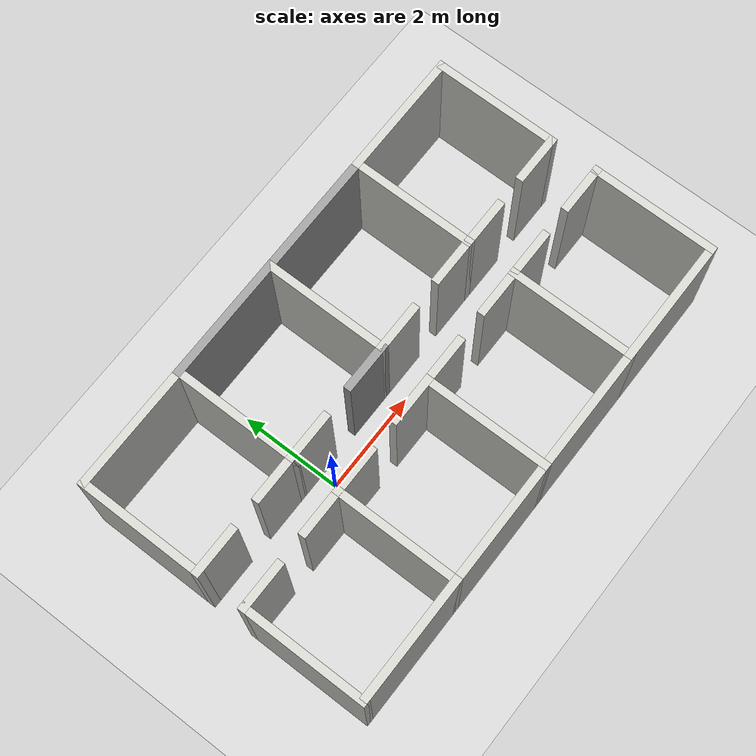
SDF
<?xml version='1.0'?>
<sdf version='1.7'>
  <world name="b2">
    <include>
      <uri>model://sun</uri>
    </include>
    <include>
      <uri>model://ground_plane</uri>
    </include>

    <model name='B2'>
      <pose>1.8577 -0.088276 0 0 -0 0</pose>
      <link name='Wall_0'>
        <collision name='Wall_0_Collision'>
          <geometry>
            <box>
              <size>1 0.15 2.5</size>
            </box>
          </geometry>
          <pose>0 0 1.25 0 -0 0</pose>
        </collision>
        <visual name='Wall_0_Visual'>
          <pose>0 0 1.25 0 -0 0</pose>
          <geometry>
            <box>
              <size>1 0.15 2.5</size>
            </box>
          </geometry>
          <material>
            <script>
              <uri>file://media/materials/scripts/gazebo.material</uri>
              <name>Gazebo/CeilingTiled</name>
            </script>
            <ambient>1 1 1 1</ambient>
          </material>
          <meta>
            <layer>0</layer>
          </meta>
        </visual>
        <pose>-0.425817 -0.466398 0 0 -0 3.14159</pose>
      </link>
      <link name='Wall_11'>
        <collision name='Wall_11_Collision'>
          <geometry>
            <box>
              <size>2.5 0.15 2.5</size>
            </box>
          </geometry>
          <pose>0 0 1.25 0 -0 0</pose>
        </collision>
        <visual name='Wall_11_Visual'>
          <pose>0 0 1.25 0 -0 0</pose>
          <geometry>
            <box>
              <size>2.5 0.15 2.5</size>
            </box>
          </geometry>
          <material>
            <script>
              <uri>file://media/materials/scripts/gazebo.material</uri>
              <name>Gazebo/CeilingTiled</name>
            </script>
            <ambient>1 1 1 1</ambient>
          </material>
          <meta>
            <layer>0</layer>
          </meta>
        </visual>
        <pose>1.18174 -2.81631 0 0 -0 3.14159</pose>
      </link>
      <link name='Wall_13'>
        <collision name='Wall_13_Collision'>
          <geometry>
            <box>
              <size>2.5 0.15 2.5</size>
            </box>
          </geometry>
          <pose>0 0 1.25 0 -0 0</pose>
        </collision>
        <visual name='Wall_13_Visual'>
          <pose>0 0 1.25 0 -0 0</pose>
          <geometry>
            <box>
              <size>2.5 0.15 2.5</size>
            </box>
          </geometry>
          <material>
            <script>
              <uri>file://media/materials/scripts/gazebo.material</uri>
              <name>Gazebo/CeilingTiled</name>
            </script>
            <ambient>1 1 1 1</ambient>
          </material>
          <meta>
            <layer>0</layer>
          </meta>
        </visual>
        <pose>2.35674 -1.64131 0 0 -0 -1.5708</pose>
      </link>
      <link name='Wall_15'>
        <collision name='Wall_15_Collision'>
          <geometry>
            <box>
              <size>1 0.15 2.5</size>
            </box>
          </geometry>
          <pose>0 0 1.25 0 -0 0</pose>
        </collision>
        <visual name='Wall_15_Visual'>
          <pose>0 0 1.25 0 -0 0</pose>
          <geometry>
            <box>
              <size>1 0.15 2.5</size>
            </box>
          </geometry>
          <material>
            <script>
              <uri>file://media/materials/scripts/gazebo.material</uri>
              <name>Gazebo/CeilingTiled</name>
            </script>
            <ambient>1 1 1 1</ambient>
          </material>
          <meta>
            <layer>0</layer>
          </meta>
        </visual>
        <pose>0.424183 -0.466398 0 0 -0 3.14159</pose>
      </link>
      <link name='Wall_17'>
        <collision name='Wall_17_Collision'>
          <geometry>
            <box>
              <size>1 0.15 2.5</size>
            </box>
          </geometry>
          <pose>0 0 1.25 0 -0 0</pose>
        </collision>
        <visual name='Wall_17_Visual'>
          <pose>0 0 1.25 0 -0 0</pose>
          <geometry>
            <box>
              <size>1 0.15 2.5</size>
            </box>
          </geometry>
          <material>
            <script>
              <uri>file://media/materials/scripts/gazebo.material</uri>
              <name>Gazebo/CeilingTiled</name>
            </script>
            <ambient>1 1 1 1</ambient>
          </material>
          <meta>
            <layer>0</layer>
          </meta>
        </visual>
        <pose>1.93174 -0.466312 0 0 -0 3.14159</pose>
      </link>
      <link name='Wall_19'>
        <collision name='Wall_19_Collision'>
          <geometry>
            <box>
              <size>2.5 0.15 2.5</size>
            </box>
          </geometry>
          <pose>0 0 1.25 0 -0 0</pose>
        </collision>
        <visual name='Wall_19_Visual'>
          <pose>0 0 1.25 0 -0 0</pose>
          <geometry>
            <box>
              <size>2.5 0.15 2.5</size>
            </box>
          </geometry>
          <material>
            <script>
              <uri>file://media/materials/scripts/gazebo.material</uri>
              <name>Gazebo/CeilingTiled</name>
            </script>
            <ambient>1 1 1 1</ambient>
          </material>
          <meta>
            <layer>0</layer>
          </meta>
        </visual>
        <pose>3.53174 -2.81631 0 0 -0 3.14159</pose>
      </link>
      <link name='Wall_2'>
        <collision name='Wall_2_Collision'>
          <geometry>
            <box>
              <size>2.5 0.15 2.5</size>
            </box>
          </geometry>
          <pose>0 0 1.25 0 -0 0</pose>
        </collision>
        <visual name='Wall_2_Visual'>
          <pose>0 0 1.25 0 -0 0</pose>
          <geometry>
            <box>
              <size>2.5 0.15 2.5</size>
            </box>
          </geometry>
          <material>
            <script>
              <uri>file://media/materials/scripts/gazebo.material</uri>
              <name>Gazebo/CeilingTiled</name>
            </script>
            <ambient>1 1 1 1</ambient>
          </material>
          <meta>
            <layer>0</layer>
          </meta>
        </visual>
        <pose>0.002964 -1.64135 0 0 -0 1.57401</pose>
      </link>
      <link name='Wall_21'>
        <collision name='Wall_21_Collision'>
          <geometry>
            <box>
              <size>2.5 0.15 2.5</size>
            </box>
          </geometry>
          <pose>0 0 1.25 0 -0 0</pose>
        </collision>
        <visual name='Wall_21_Visual'>
          <pose>0 0 1.25 0 -0 0</pose>
          <geometry>
            <box>
              <size>2.5 0.15 2.5</size>
            </box>
          </geometry>
          <material>
            <script>
              <uri>file://media/materials/scripts/gazebo.material</uri>
              <name>Gazebo/CeilingTiled</name>
            </script>
            <ambient>1 1 1 1</ambient>
          </material>
          <meta>
            <layer>0</layer>
          </meta>
        </visual>
        <pose>4.70674 -1.64131 0 0 -0 -1.5708</pose>
      </link>
      <link name='Wall_23'>
        <collision name='Wall_23_Collision'>
          <geometry>
            <box>
              <size>1 0.15 2.5</size>
            </box>
          </geometry>
          <pose>0 0 1.25 0 -0 0</pose>
        </collision>
        <visual name='Wall_23_Visual'>
          <pose>0 0 1.25 0 -0 0</pose>
          <geometry>
            <box>
              <size>1 0.15 2.5</size>
            </box>
          </geometry>
          <material>
            <script>
              <uri>file://media/materials/scripts/gazebo.material</uri>
              <name>Gazebo/CeilingTiled</name>
            </script>
            <ambient>1 1 1 1</ambient>
          </material>
          <meta>
            <layer>0</layer>
          </meta>
        </visual>
        <pose>2.78174 -0.466312 0 0 -0 0</pose>
      </link>
      <link name='Wall_25'>
        <collision name='Wall_25_Collision'>
          <geometry>
            <box>
              <size>1 0.15 2.5</size>
            </box>
          </geometry>
          <pose>0 0 1.25 0 -0 0</pose>
        </collision>
        <visual name='Wall_25_Visual'>
          <pose>0 0 1.25 0 -0 0</pose>
          <geometry>
            <box>
              <size>1 0.15 2.5</size>
            </box>
          </geometry>
          <material>
            <script>
              <uri>file://media/materials/scripts/gazebo.material</uri>
              <name>Gazebo/CeilingTiled</name>
            </script>
            <ambient>1 1 1 1</ambient>
          </material>
          <meta>
            <layer>0</layer>
          </meta>
        </visual>
        <pose>4.28174 -0.466312 0 0 -0 0</pose>
      </link>
      <link name='Wall_27'>
        <collision name='Wall_27_Collision'>
          <geometry>
            <box>
              <size>2.5 0.15 2.5</size>
            </box>
          </geometry>
          <pose>0 0 1.25 0 -0 0</pose>
        </collision>
        <visual name='Wall_27_Visual'>
          <pose>0 0 1.25 0 -0 0</pose>
          <geometry>
            <box>
              <size>2.5 0.15 2.5</size>
            </box>
          </geometry>
          <material>
            <script>
              <uri>file://media/materials/scripts/gazebo.material</uri>
              <name>Gazebo/CeilingTiled</name>
            </script>
            <ambient>1 1 1 1</ambient>
          </material>
          <meta>
            <layer>0</layer>
          </meta>
        </visual>
        <pose>-3.51826 -2.81631 0 0 -0 0</pose>
      </link>
      <link name='Wall_29'>
        <collision name='Wall_29_Collision'>
          <geometry>
            <box>
              <size>2.5 0.15 2.5</size>
            </box>
          </geometry>
          <pose>0 0 1.25 0 -0 0</pose>
        </collision>
        <visual name='Wall_29_Visual'>
          <pose>0 0 1.25 0 -0 0</pose>
          <geometry>
            <box>
              <size>2.5 0.15 2.5</size>
            </box>
          </geometry>
          <material>
            <script>
              <uri>file://media/materials/scripts/gazebo.material</uri>
              <name>Gazebo/CeilingTiled</name>
            </script>
            <ambient>1 1 1 1</ambient>
          </material>
          <meta>
            <layer>0</layer>
          </meta>
        </visual>
        <pose>-4.69326 -1.64131 0 0 -0 -1.5708</pose>
      </link>
      <link name='Wall_31'>
        <collision name='Wall_31_Collision'>
          <geometry>
            <box>
              <size>1 0.15 2.5</size>
            </box>
          </geometry>
          <pose>0 0 1.25 0 -0 0</pose>
        </collision>
        <visual name='Wall_31_Visual'>
          <pose>0 0 1.25 0 -0 0</pose>
          <geometry>
            <box>
              <size>1 0.15 2.5</size>
            </box>
          </geometry>
          <material>
            <script>
              <uri>file://media/materials/scripts/gazebo.material</uri>
              <name>Gazebo/CeilingTiled</name>
            </script>
            <ambient>1 1 1 1</ambient>
          </material>
          <meta>
            <layer>0</layer>
          </meta>
        </visual>
        <pose>-4.26826 -0.466312 0 0 -0 3.14159</pose>
      </link>
      <link name='Wall_33'>
        <collision name='Wall_33_Collision'>
          <geometry>
            <box>
              <size>1 0.15 2.5</size>
            </box>
          </geometry>
          <pose>0 0 1.25 0 -0 0</pose>
        </collision>
        <visual name='Wall_33_Visual'>
          <pose>0 0 1.25 0 -0 0</pose>
          <geometry>
            <box>
              <size>1 0.15 2.5</size>
            </box>
          </geometry>
          <material>
            <script>
              <uri>file://media/materials/scripts/gazebo.material</uri>
              <name>Gazebo/CeilingTiled</name>
            </script>
            <ambient>1 1 1 1</ambient>
          </material>
          <meta>
            <layer>0</layer>
          </meta>
        </visual>
        <pose>-2.76826 -0.466312 0 0 -0 0</pose>
      </link>
      <link name='Wall_35'>
        <collision name='Wall_35_Collision'>
          <geometry>
            <box>
              <size>2.5 0.15 2.5</size>
            </box>
          </geometry>
          <pose>0 0 1.25 0 -0 0</pose>
        </collision>
        <visual name='Wall_35_Visual'>
          <pose>0 0 1.25 0 -0 0</pose>
          <geometry>
            <box>
              <size>2.5 0.15 2.5</size>
            </box>
          </geometry>
          <material>
            <script>
              <uri>file://media/materials/scripts/gazebo.material</uri>
              <name>Gazebo/CeilingTiled</name>
            </script>
            <ambient>1 1 1 1</ambient>
          </material>
          <meta>
            <layer>0</layer>
          </meta>
        </visual>
        <pose>-4.70674 1.64159 0 0 -0 1.5708</pose>
      </link>
      <link name='Wall_37'>
        <collision name='Wall_37_Collision'>
          <geometry>
            <box>
              <size>2.5 0.15 2.5</size>
            </box>
          </geometry>
          <pose>0 0 1.25 0 -0 0</pose>
        </collision>
        <visual name='Wall_37_Visual'>
          <pose>0 0 1.25 0 -0 0</pose>
          <geometry>
            <box>
              <size>2.5 0.15 2.5</size>
            </box>
          </geometry>
          <material>
            <script>
              <uri>file://media/materials/scripts/gazebo.material</uri>
              <name>Gazebo/CeilingTiled</name>
            </script>
            <ambient>1 1 1 1</ambient>
          </material>
          <meta>
            <layer>0</layer>
          </meta>
        </visual>
        <pose>-3.53174 2.81659 0 0 -0 0</pose>
      </link>
      <link name='Wall_38'>
        <collision name='Wall_38_Collision'>
          <geometry>
            <box>
              <size>2.5 0.15 2.5</size>
            </box>
          </geometry>
          <pose>0 0 1.25 0 -0 0</pose>
        </collision>
        <visual name='Wall_38_Visual'>
          <pose>0 0 1.25 0 -0 0</pose>
          <geometry>
            <box>
              <size>2.5 0.15 2.5</size>
            </box>
          </geometry>
          <material>
            <script>
              <uri>file://media/materials/scripts/gazebo.material</uri>
              <name>Gazebo/Grey</name>
            </script>
            <ambient>1 1 1 1</ambient>
          </material>
          <meta>
            <layer>0</layer>
          </meta>
        </visual>
        <pose>-1.18175 2.81659 0 0 -0 0</pose>
      </link>
      <link name='Wall_39'>
        <collision name='Wall_39_Collision'>
          <geometry>
            <box>
              <size>2.5 0.15 2.5</size>
            </box>
          </geometry>
          <pose>0 0 1.25 0 -0 0</pose>
        </collision>
        <visual name='Wall_39_Visual'>
          <pose>0 0 1.25 0 -0 0</pose>
          <geometry>
            <box>
              <size>2.5 0.15 2.5</size>
            </box>
          </geometry>
          <material>
            <script>
              <uri>file://media/materials/scripts/gazebo.material</uri>
              <name>Gazebo/Grey</name>
            </script>
            <ambient>1 1 1 1</ambient>
          </material>
          <meta>
            <layer>0</layer>
          </meta>
        </visual>
        <pose>1.16826 2.81659 0 0 -0 0</pose>
      </link>
      <link name='Wall_4'>
        <collision name='Wall_4_Collision'>
          <geometry>
            <box>
              <size>2.5 0.15 2.5</size>
            </box>
          </geometry>
          <pose>0 0 1.25 0 -0 0</pose>
        </collision>
        <visual name='Wall_4_Visual'>
          <pose>0 0 1.25 0 -0 0</pose>
          <geometry>
            <box>
              <size>2.5 0.15 2.5</size>
            </box>
          </geometry>
          <material>
            <script>
              <uri>file://media/materials/scripts/gazebo.material</uri>
              <name>Gazebo/CeilingTiled</name>
            </script>
            <ambient>1 1 1 1</ambient>
          </material>
          <meta>
            <layer>0</layer>
          </meta>
        </visual>
        <pose>-1.16826 -2.81631 0 0 -0 0</pose>
      </link>
      <link name='Wall_40'>
        <collision name='Wall_40_Collision'>
          <geometry>
            <box>
              <size>2.5 0.15 2.5</size>
            </box>
          </geometry>
          <pose>0 0 1.25 0 -0 0</pose>
        </collision>
        <visual name='Wall_40_Visual'>
          <pose>0 0 1.25 0 -0 0</pose>
          <geometry>
            <box>
              <size>2.5 0.15 2.5</size>
            </box>
          </geometry>
          <material>
            <script>
              <uri>file://media/materials/scripts/gazebo.material</uri>
              <name>Gazebo/CeilingTiled</name>
            </script>
            <ambient>1 1 1 1</ambient>
          </material>
          <meta>
            <layer>0</layer>
          </meta>
        </visual>
        <pose>3.51825 2.81659 0 0 -0 0</pose>
      </link>
      <link name='Wall_42'>
        <collision name='Wall_42_Collision'>
          <geometry>
            <box>
              <size>2.5 0.15 2.5</size>
            </box>
          </geometry>
          <pose>0 0 1.25 0 -0 0</pose>
        </collision>
        <visual name='Wall_42_Visual'>
          <pose>0 0 1.25 0 -0 0</pose>
          <geometry>
            <box>
              <size>2.5 0.15 2.5</size>
            </box>
          </geometry>
          <material>
            <script>
              <uri>file://media/materials/scripts/gazebo.material</uri>
              <name>Gazebo/CeilingTiled</name>
            </script>
            <ambient>1 1 1 1</ambient>
          </material>
          <meta>
            <layer>0</layer>
          </meta>
        </visual>
        <pose>4.69325 1.64159 0 0 -0 1.5708</pose>
      </link>
      <link name='Wall_44'>
        <collision name='Wall_44_Collision'>
          <geometry>
            <box>
              <size>2.5 0.15 2.5</size>
            </box>
          </geometry>
          <pose>0 0 1.25 0 -0 0</pose>
        </collision>
        <visual name='Wall_44_Visual'>
          <pose>0 0 1.25 0 -0 0</pose>
          <geometry>
            <box>
              <size>2.5 0.15 2.5</size>
            </box>
          </geometry>
          <material>
            <script>
              <uri>file://media/materials/scripts/gazebo.material</uri>
              <name>Gazebo/CeilingTiled</name>
            </script>
            <ambient>1 1 1 1</ambient>
          </material>
          <meta>
            <layer>0</layer>
          </meta>
        </visual>
        <pose>-2.35675 1.64159 0 0 -0 1.5708</pose>
      </link>
      <link name='Wall_46'>
        <collision name='Wall_46_Collision'>
          <geometry>
            <box>
              <size>2.5 0.15 2.5</size>
            </box>
          </geometry>
          <pose>0 0 1.25 0 -0 0</pose>
        </collision>
        <visual name='Wall_46_Visual'>
          <pose>0 0 1.25 0 -0 0</pose>
          <geometry>
            <box>
              <size>2.5 0.15 2.5</size>
            </box>
          </geometry>
          <material>
            <script>
              <uri>file://media/materials/scripts/gazebo.material</uri>
              <name>Gazebo/CeilingTiled</name>
            </script>
            <ambient>1 1 1 1</ambient>
          </material>
          <meta>
            <layer>0</layer>
          </meta>
        </visual>
        <pose>-0.006745 1.64159 0 0 -0 1.5708</pose>
      </link>
      <link name='Wall_48'>
        <collision name='Wall_48_Collision'>
          <geometry>
            <box>
              <size>2.5 0.15 2.5</size>
            </box>
          </geometry>
          <pose>0 0 1.25 0 -0 0</pose>
        </collision>
        <visual name='Wall_48_Visual'>
          <pose>0 0 1.25 0 -0 0</pose>
          <geometry>
            <box>
              <size>2.5 0.15 2.5</size>
            </box>
          </geometry>
          <material>
            <script>
              <uri>file://media/materials/scripts/gazebo.material</uri>
              <name>Gazebo/CeilingTiled</name>
            </script>
            <ambient>1 1 1 1</ambient>
          </material>
          <meta>
            <layer>0</layer>
          </meta>
        </visual>
        <pose>2.34326 1.64159 0 0 -0 1.5708</pose>
      </link>
      <link name='Wall_50'>
        <collision name='Wall_50_Collision'>
          <geometry>
            <box>
              <size>1 0.15 2.5</size>
            </box>
          </geometry>
          <pose>0 0 1.25 0 -0 0</pose>
        </collision>
        <visual name='Wall_50_Visual'>
          <pose>0 0 1.25 0 -0 0</pose>
          <geometry>
            <box>
              <size>1 0.15 2.5</size>
            </box>
          </geometry>
          <material>
            <script>
              <uri>file://media/materials/scripts/gazebo.material</uri>
              <name>Gazebo/CeilingTiled</name>
            </script>
            <ambient>1 1 1 1</ambient>
          </material>
          <meta>
            <layer>0</layer>
          </meta>
        </visual>
        <pose>-4.28174 0.46659 0 0 -0 3.14159</pose>
      </link>
      <link name='Wall_52'>
        <collision name='Wall_52_Collision'>
          <geometry>
            <box>
              <size>1 0.15 2.5</size>
            </box>
          </geometry>
          <pose>0 0 1.25 0 -0 0</pose>
        </collision>
        <visual name='Wall_52_Visual'>
          <pose>0 0 1.25 0 -0 0</pose>
          <geometry>
            <box>
              <size>1 0.15 2.5</size>
            </box>
          </geometry>
          <material>
            <script>
              <uri>file://media/materials/scripts/gazebo.material</uri>
              <name>Gazebo/CeilingTiled</name>
            </script>
            <ambient>1 1 1 1</ambient>
          </material>
          <meta>
            <layer>0</layer>
          </meta>
        </visual>
        <pose>-2.78174 0.46659 0 0 -0 0</pose>
      </link>
      <link name='Wall_54'>
        <collision name='Wall_54_Collision'>
          <geometry>
            <box>
              <size>1 0.15 2.5</size>
            </box>
          </geometry>
          <pose>0 0 1.25 0 -0 0</pose>
        </collision>
        <visual name='Wall_54_Visual'>
          <pose>0 0 1.25 0 -0 0</pose>
          <geometry>
            <box>
              <size>1 0.15 2.5</size>
            </box>
          </geometry>
          <material>
            <script>
              <uri>file://media/materials/scripts/gazebo.material</uri>
              <name>Gazebo/Grey</name>
            </script>
            <ambient>1 1 1 1</ambient>
          </material>
          <meta>
            <layer>0</layer>
          </meta>
        </visual>
        <pose>-0.431745 0.46659 0 0 -0 0</pose>
      </link>
      <link name='Wall_56'>
        <collision name='Wall_56_Collision'>
          <geometry>
            <box>
              <size>1 0.15 2.5</size>
            </box>
          </geometry>
          <pose>0 0 1.25 0 -0 0</pose>
        </collision>
        <visual name='Wall_56_Visual'>
          <pose>0 0 1.25 0 -0 0</pose>
          <geometry>
            <box>
              <size>1 0.15 2.5</size>
            </box>
          </geometry>
          <material>
            <script>
              <uri>file://media/materials/scripts/gazebo.material</uri>
              <name>Gazebo/CeilingTiled</name>
            </script>
            <ambient>1 1 1 1</ambient>
          </material>
          <meta>
            <layer>0</layer>
          </meta>
        </visual>
        <pose>-1.93175 0.46659 0 0 -0 3.14159</pose>
      </link>
      <link name='Wall_58'>
        <collision name='Wall_58_Collision'>
          <geometry>
            <box>
              <size>1 0.15 2.5</size>
            </box>
          </geometry>
          <pose>0 0 1.25 0 -0 0</pose>
        </collision>
        <visual name='Wall_58_Visual'>
          <pose>0 0 1.25 0 -0 0</pose>
          <geometry>
            <box>
              <size>1 0.15 2.5</size>
            </box>
          </geometry>
          <material>
            <script>
              <uri>file://media/materials/scripts/gazebo.material</uri>
              <name>Gazebo/CeilingTiled</name>
            </script>
            <ambient>1 1 1 1</ambient>
          </material>
          <meta>
            <layer>0</layer>
          </meta>
        </visual>
        <pose>0.418256 0.46659 0 0 -0 3.14159</pose>
      </link>
      <link name='Wall_60'>
        <collision name='Wall_60_Collision'>
          <geometry>
            <box>
              <size>1 0.15 2.5</size>
            </box>
          </geometry>
          <pose>0 0 1.25 0 -0 0</pose>
        </collision>
        <visual name='Wall_60_Visual'>
          <pose>0 0 1.25 0 -0 0</pose>
          <geometry>
            <box>
              <size>1 0.15 2.5</size>
            </box>
          </geometry>
          <material>
            <script>
              <uri>file://media/materials/scripts/gazebo.material</uri>
              <name>Gazebo/CeilingTiled</name>
            </script>
            <ambient>1 1 1 1</ambient>
          </material>
          <meta>
            <layer>0</layer>
          </meta>
        </visual>
        <pose>1.91826 0.46659 0 0 -0 0</pose>
      </link>
      <link name='Wall_62'>
        <collision name='Wall_62_Collision'>
          <geometry>
            <box>
              <size>1 0.15 2.5</size>
            </box>
          </geometry>
          <pose>0 0 1.25 0 -0 0</pose>
        </collision>
        <visual name='Wall_62_Visual'>
          <pose>0 0 1.25 0 -0 0</pose>
          <geometry>
            <box>
              <size>1 0.15 2.5</size>
            </box>
          </geometry>
          <material>
            <script>
              <uri>file://media/materials/scripts/gazebo.material</uri>
              <name>Gazebo/CeilingTiled</name>
            </script>
            <ambient>1 1 1 1</ambient>
          </material>
          <meta>
            <layer>0</layer>
          </meta>
        </visual>
        <pose>2.76825 0.46659 0 0 -0 3.14159</pose>
      </link>
      <link name='Wall_64'>
        <collision name='Wall_64_Collision'>
          <geometry>
            <box>
              <size>1 0.15 2.5</size>
            </box>
          </geometry>
          <pose>0 0 1.25 0 -0 0</pose>
        </collision>
        <visual name='Wall_64_Visual'>
          <pose>0 0 1.25 0 -0 0</pose>
          <geometry>
            <box>
              <size>1 0.15 2.5</size>
            </box>
          </geometry>
          <material>
            <script>
              <uri>file://media/materials/scripts/gazebo.material</uri>
              <name>Gazebo/CeilingTiled</name>
            </script>
            <ambient>1 1 1 1</ambient>
          </material>
          <meta>
            <layer>0</layer>
          </meta>
        </visual>
        <pose>4.26825 0.46659 0 0 -0 0</pose>
      </link>
      <link name='Wall_7'>
        <collision name='Wall_7_Collision'>
          <geometry>
            <box>
              <size>2.5 0.15 2.5</size>
            </box>
          </geometry>
          <pose>0 0 1.25 0 -0 0</pose>
        </collision>
        <visual name='Wall_7_Visual'>
          <pose>0 0 1.25 0 -0 0</pose>
          <geometry>
            <box>
              <size>2.5 0.15 2.5</size>
            </box>
          </geometry>
          <material>
            <script>
              <uri>file://media/materials/scripts/gazebo.material</uri>
              <name>Gazebo/CeilingTiled</name>
            </script>
            <ambient>1 1 1 1</ambient>
          </material>
          <meta>
            <layer>0</layer>
          </meta>
        </visual>
        <pose>-2.34326 -1.64131 0 0 -0 -1.5708</pose>
      </link>
      <link name='Wall_9'>
        <collision name='Wall_9_Collision'>
          <geometry>
            <box>
              <size>1 0.15 2.5</size>
            </box>
          </geometry>
          <pose>0 0 1.25 0 -0 0</pose>
        </collision>
        <visual name='Wall_9_Visual'>
          <pose>0 0 1.25 0 -0 0</pose>
          <geometry>
            <box>
              <size>1 0.15 2.5</size>
            </box>
          </geometry>
          <material>
            <script>
              <uri>file://media/materials/scripts/gazebo.material</uri>
              <name>Gazebo/CeilingTiled</name>
            </script>
            <ambient>1 1 1 1</ambient>
          </material>
          <meta>
            <layer>0</layer>
          </meta>
        </visual>
        <pose>-1.91826 -0.466312 0 0 -0 3.14159</pose>
      </link>
      <static>1</static>
    </model>
  </world>
</sdf>
